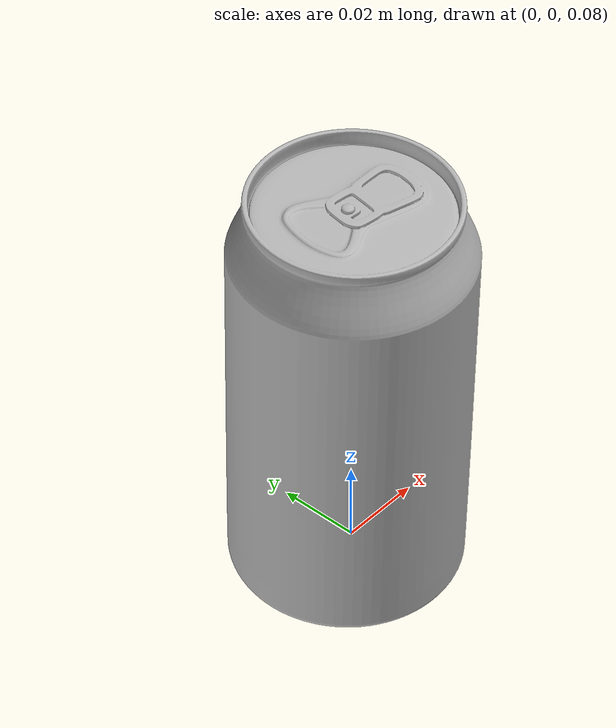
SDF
<?xml version="1.0" ?>
<sdf version="1.5">
  <model name="Can">
    <link name="link">
      <pose>0 0 0.115 0 0 0</pose>
      <inertial>
        <mass>0.390</mass>
        <inertia>
          <ixx>0.00058</ixx>
          <ixy>0</ixy>
          <ixz>0</ixz>
          <iyy>0.00058</iyy>
          <iyz>0</iyz>
          <izz>0.00019</izz>
        </inertia>
      </inertial>
      <collision name="collision">
        <geometry>
          <mesh>
            <uri>model://2-Can/meshes/Can.dae</uri>
          </mesh>
        </geometry>
      </collision>
      <visual name="visual">
        <geometry>
          <mesh>
            <uri>model://2-Can/meshes/Can.dae</uri>
          </mesh>
        </geometry>
        <material>
          <script>
            <uri>model://2-Can/materials/scripts</uri>
            <uri>model://2-Can/materials/textures</uri>
            <name>Can/Diffuse</name>
          </script>
        </material>
      </visual>
    </link>
  </model>
</sdf>
